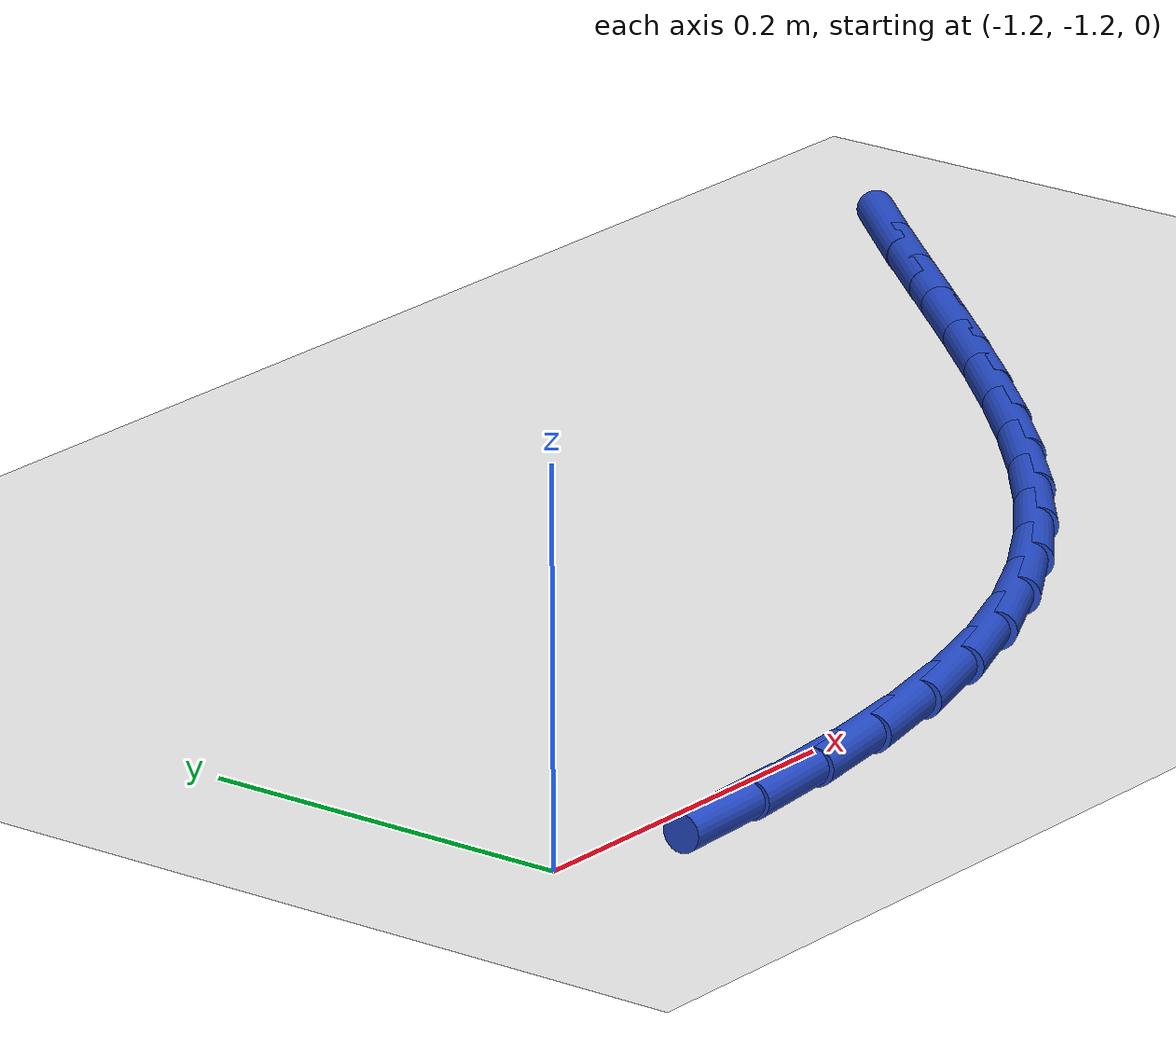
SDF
<sdf version="1.6">
 <world name="default">
  <model name="ground_plane">
   <static>1</static>
   <link name="link">
    <collision name="collision">
     <geometry><plane><normal>0 0 1</normal><size>100 100</size></plane></geometry>
     <surface><friction><ode><mu>100</mu><mu2>50</mu2></ode></friction></surface>
    </collision>
    <visual name="visual">
     <cast_shadows>0</cast_shadows>
     <geometry><plane><normal>0 0 1</normal><size>100 100</size></plane></geometry>
     <material>
      <script><uri>file://media/materials/scripts/gazebo.material</uri><name>Gazebo/WhiteGlow</name></script>
     </material>
    </visual>
   </link>
  </model>
  <model name="line">
   <link name="link_106">
    <pose>-1.1051318322915935 -1.2305723392270274 0.01 0 1.57 0.041509351207022066</pose>
    <collision name="collision">
     <geometry><cylinder><radius>0.01</radius><length>0.08</length></cylinder></geometry>
    </collision>
    <visual name="visual">
     <material>
      <script><name>Gazebo/Blue</name><uri>file://media/materials/scripts/gazebo.material</uri></script>
     </material>
     <geometry><cylinder><radius>0.01</radius><length>0.08</length></cylinder></geometry>
    </visual>
   </link>
   <link name="link_107">
    <pose>-1.0513588037159844 -1.228338972834752 0.01 0 1.57 0.09669525145830037</pose>
    <collision name="collision">
     <geometry><cylinder><radius>0.01</radius><length>0.08</length></cylinder></geometry>
    </collision>
    <visual name="visual">
     <material>
      <script><name>Gazebo/Blue</name><uri>file://media/materials/scripts/gazebo.material</uri></script>
     </material>
     <geometry><cylinder><radius>0.01</radius><length>0.08</length></cylinder></geometry>
    </visual>
   </link>
   <link name="link_108">
    <pose>-0.9983781297951242 -1.2231999667345885 0.01 0 1.57 0.15800750637988495</pose>
    <collision name="collision">
     <geometry><cylinder><radius>0.01</radius><length>0.08</length></cylinder></geometry>
    </collision>
    <visual name="visual">
     <material>
      <script><name>Gazebo/Blue</name><uri>file://media/materials/scripts/gazebo.material</uri></script>
     </material>
     <geometry><cylinder><radius>0.01</radius><length>0.08</length></cylinder></geometry>
    </visual>
   </link>
   <link name="link_109">
    <pose>-0.9464579207877342 -1.2149272223100078 0.01 0 1.57 0.22604033309905433</pose>
    <collision name="collision">
     <geometry><cylinder><radius>0.01</radius><length>0.08</length></cylinder></geometry>
    </collision>
    <visual name="visual">
     <material>
      <script><name>Gazebo/Blue</name><uri>file://media/materials/scripts/gazebo.material</uri></script>
     </material>
     <geometry><cylinder><radius>0.01</radius><length>0.08</length></cylinder></geometry>
    </visual>
   </link>
   <link name="link_110">
    <pose>-0.8958662869525376 -1.2032926409444795 0.01 0 1.57 0.30127742309918565</pose>
    <collision name="collision">
     <geometry><cylinder><radius>0.01</radius><length>0.08</length></cylinder></geometry>
    </collision>
    <visual name="visual">
     <material>
      <script><name>Gazebo/Blue</name><uri>file://media/materials/scripts/gazebo.material</uri></script>
     </material>
     <geometry><cylinder><radius>0.01</radius><length>0.08</length></cylinder></geometry>
    </visual>
   </link>
   <link name="link_111">
    <pose>-0.8468713385482555 -1.1880681240214745 0.01 0 1.57 0.38398581233174556</pose>
    <collision name="collision">
     <geometry><cylinder><radius>0.01</radius><length>0.08</length></cylinder></geometry>
    </collision>
    <visual name="visual">
     <material>
      <script><name>Gazebo/Blue</name><uri>file://media/materials/scripts/gazebo.material</uri></script>
     </material>
     <geometry><cylinder><radius>0.01</radius><length>0.08</length></cylinder></geometry>
    </visual>
   </link>
   <link name="link_112">
    <pose>-0.7997411858336101 -1.1690255729244636 0.01 0 1.57 0.47322306624549704</pose>
    <collision name="collision">
     <geometry><cylinder><radius>0.01</radius><length>0.08</length></cylinder></geometry>
    </collision>
    <visual name="visual">
     <material>
      <script><name>Gazebo/Blue</name><uri>file://media/materials/scripts/gazebo.material</uri></script>
     </material>
     <geometry><cylinder><radius>0.01</radius><length>0.08</length></cylinder></geometry>
    </visual>
   </link>
   <link name="link_113">
    <pose>-0.7547173278151074 -1.1459721297073622 0.01 0 1.57 0.5586134579030667</pose>
    <collision name="collision">
     <geometry><cylinder><radius>0.01</radius><length>0.08</length></cylinder></geometry>
    </collision>
    <visual name="visual">
     <material>
      <script><name>Gazebo/Blue</name><uri>file://media/materials/scripts/gazebo.material</uri></script>
     </material>
     <geometry><cylinder><radius>0.01</radius><length>0.08</length></cylinder></geometry>
    </visual>
   </link>
   <link name="link_114">
    <pose>-0.711741763805451 -1.1191115569935757 0.01 0 1.57 0.6330632782630781</pose>
    <collision name="collision">
     <geometry><cylinder><radius>0.01</radius><length>0.08</length></cylinder></geometry>
    </collision>
    <visual name="visual">
     <material>
      <script><name>Gazebo/Blue</name><uri>file://media/materials/scripts/gazebo.material</uri></script>
     </material>
     <geometry><cylinder><radius>0.01</radius><length>0.08</length></cylinder></geometry>
    </visual>
   </link>
   <link name="link_115">
    <pose>-0.6705678468932826 -1.0888974372706557 0.01 0 1.57 0.6961065527368835</pose>
    <collision name="collision">
     <geometry><cylinder><radius>0.01</radius><length>0.08</length></cylinder></geometry>
    </collision>
    <visual name="visual">
     <material>
      <script><name>Gazebo/Blue</name><uri>file://media/materials/scripts/gazebo.material</uri></script>
     </material>
     <geometry><cylinder><radius>0.01</radius><length>0.08</length></cylinder></geometry>
    </visual>
   </link>
   <link name="link_116">
    <pose>-0.6309459855463873 -1.0557872525199612 0.01 0 1.57 0.7479079761437735</pose>
    <collision name="collision">
     <geometry><cylinder><radius>0.01</radius><length>0.08</length></cylinder></geometry>
    </collision>
    <visual name="visual">
     <material>
      <script><name>Gazebo/Blue</name><uri>file://media/materials/scripts/gazebo.material</uri></script>
     </material>
     <geometry><cylinder><radius>0.01</radius><length>0.08</length></cylinder></geometry>
    </visual>
   </link>
   <link name="link_117">
    <pose>-0.5926265882325491 -1.0202384847228507 0.01 0 1.57 0.7889189609665751</pose>
    <collision name="collision">
     <geometry><cylinder><radius>0.01</radius><length>0.08</length></cylinder></geometry>
    </collision>
    <visual name="visual">
     <material>
      <script><name>Gazebo/Blue</name><uri>file://media/materials/scripts/gazebo.material</uri></script>
     </material>
     <geometry><cylinder><radius>0.01</radius><length>0.08</length></cylinder></geometry>
    </visual>
   </link>
   <link name="link_118">
    <pose>-0.5553600634195544 -0.9827086158606851 0.01 0 1.57 0.8196849888727429</pose>
    <collision name="collision">
     <geometry><cylinder><radius>0.01</radius><length>0.08</length></cylinder></geometry>
    </collision>
    <visual name="visual">
     <material>
      <script><name>Gazebo/Blue</name><uri>file://media/materials/scripts/gazebo.material</uri></script>
     </material>
     <geometry><cylinder><radius>0.01</radius><length>0.08</length></cylinder></geometry>
    </visual>
   </link>
   <link name="link_119">
    <pose>-0.5188968195751867 -0.9436551279148224 0.01 0 1.57 0.8407160745192289</pose>
    <collision name="collision">
     <geometry><cylinder><radius>0.01</radius><length>0.08</length></cylinder></geometry>
    </collision>
    <visual name="visual">
     <material>
      <script><name>Gazebo/Blue</name><uri>file://media/materials/scripts/gazebo.material</uri></script>
     </material>
     <geometry><cylinder><radius>0.01</radius><length>0.08</length></cylinder></geometry>
    </visual>
   </link>
   <link name="link_120">
    <pose>-0.48298726516723156 -0.9035355028666224 0.01 0 1.57 0.852408554376517</pose>
    <collision name="collision">
     <geometry><cylinder><radius>0.01</radius><length>0.08</length></cylinder></geometry>
    </collision>
    <visual name="visual">
     <material>
      <script><name>Gazebo/Blue</name><uri>file://media/materials/scripts/gazebo.material</uri></script>
     </material>
     <geometry><cylinder><radius>0.01</radius><length>0.08</length></cylinder></geometry>
    </visual>
   </link>
   <link name="link_121">
    <pose>-0.44738180866347377 -0.8628072226974443 0.01 0 1.57 0.855002601147895</pose>
    <collision name="collision">
     <geometry><cylinder><radius>0.01</radius><length>0.08</length></cylinder></geometry>
    </collision>
    <visual name="visual">
     <material>
      <script><name>Gazebo/Blue</name><uri>file://media/materials/scripts/gazebo.material</uri></script>
     </material>
     <geometry><cylinder><radius>0.01</radius><length>0.08</length></cylinder></geometry>
    </visual>
   </link>
   <link name="link_122">
    <pose>-0.4118308585316974 -0.8219277693886461 0.01 0 1.57 0.8485629950406899</pose>
    <collision name="collision">
     <geometry><cylinder><radius>0.01</radius><length>0.08</length></cylinder></geometry>
    </collision>
    <visual name="visual">
     <material>
      <script><name>Gazebo/Blue</name><uri>file://media/materials/scripts/gazebo.material</uri></script>
     </material>
     <geometry><cylinder><radius>0.01</radius><length>0.08</length></cylinder></geometry>
    </visual>
   </link>
   <link name="link_123">
    <pose>-0.3760848234275723 -0.7813546247065388 0.01 0 1.57 0.8362648200237897</pose>
    <collision name="collision">
     <geometry><cylinder><radius>0.01</radius><length>0.08</length></cylinder></geometry>
    </collision>
    <visual name="visual">
     <material>
      <script><name>Gazebo/Blue</name><uri>file://media/materials/scripts/gazebo.material</uri></script>
     </material>
     <geometry><cylinder><radius>0.01</radius><length>0.08</length></cylinder></geometry>
    </visual>
   </link>
  </model>
 </world>
</sdf>
